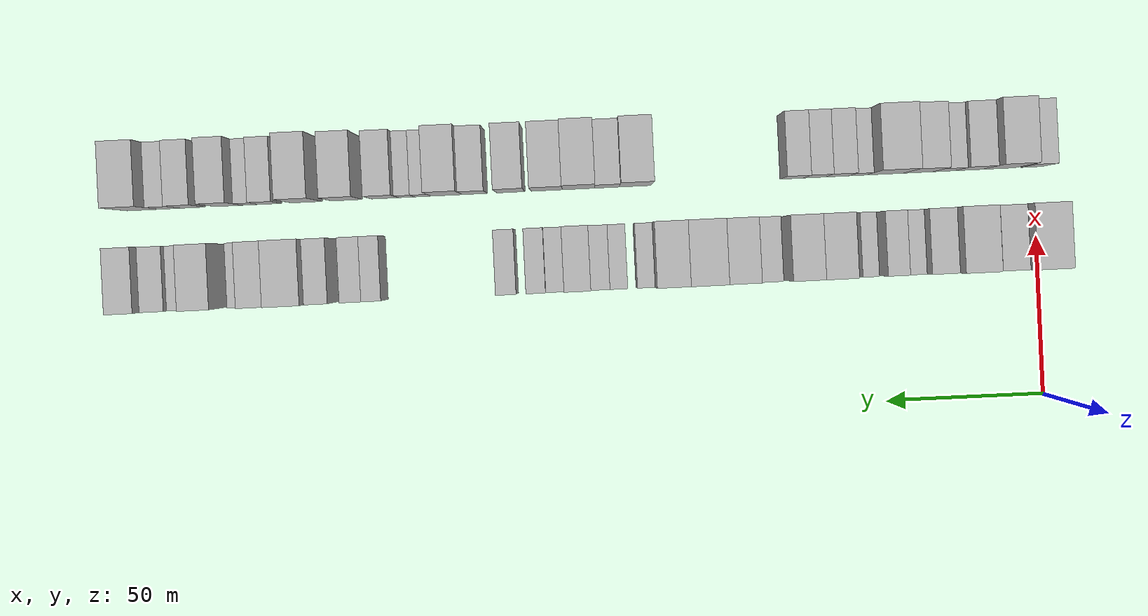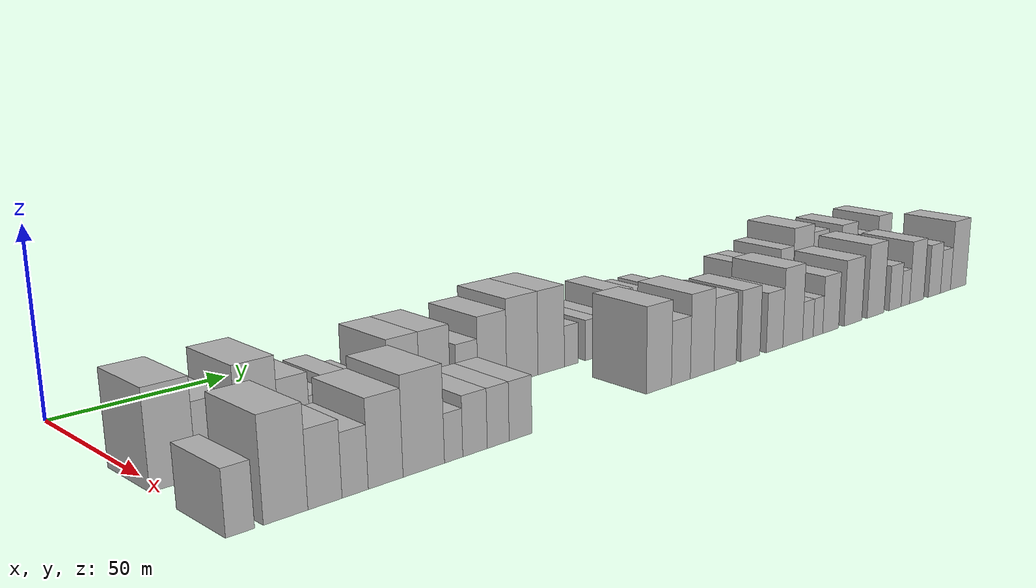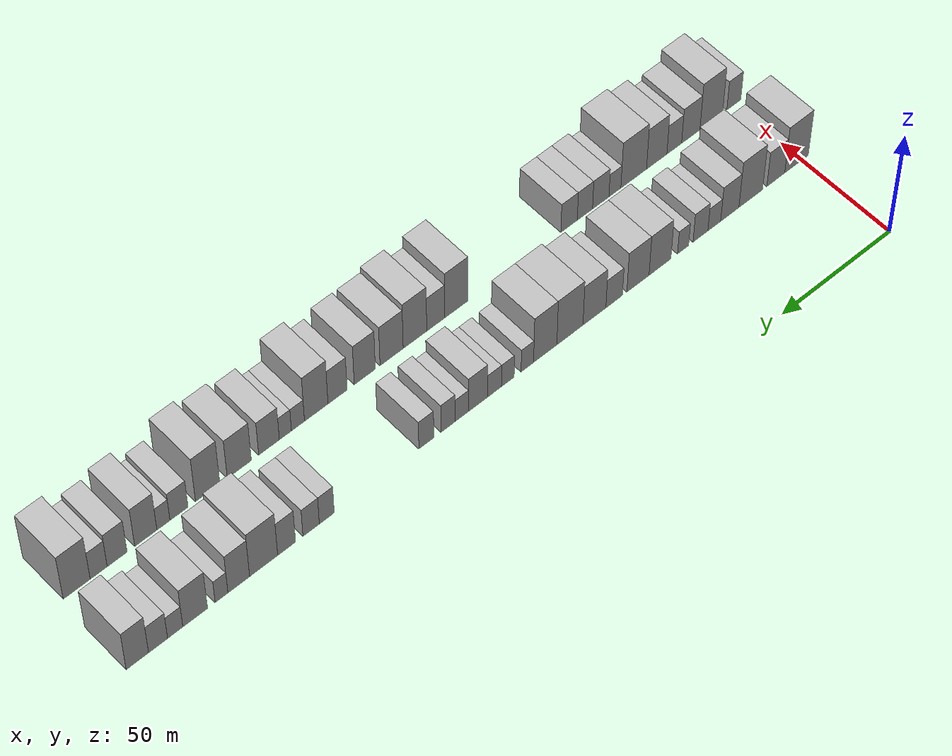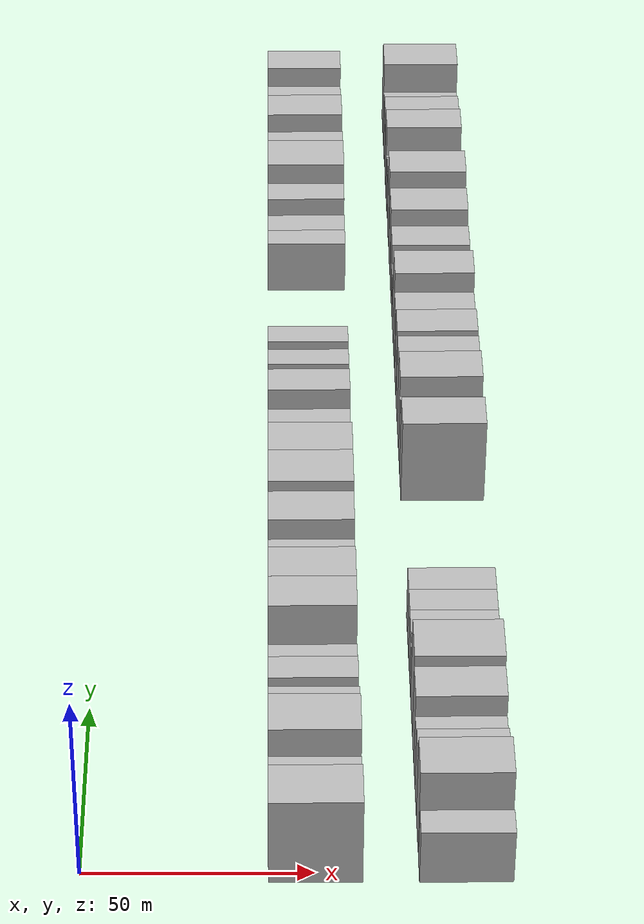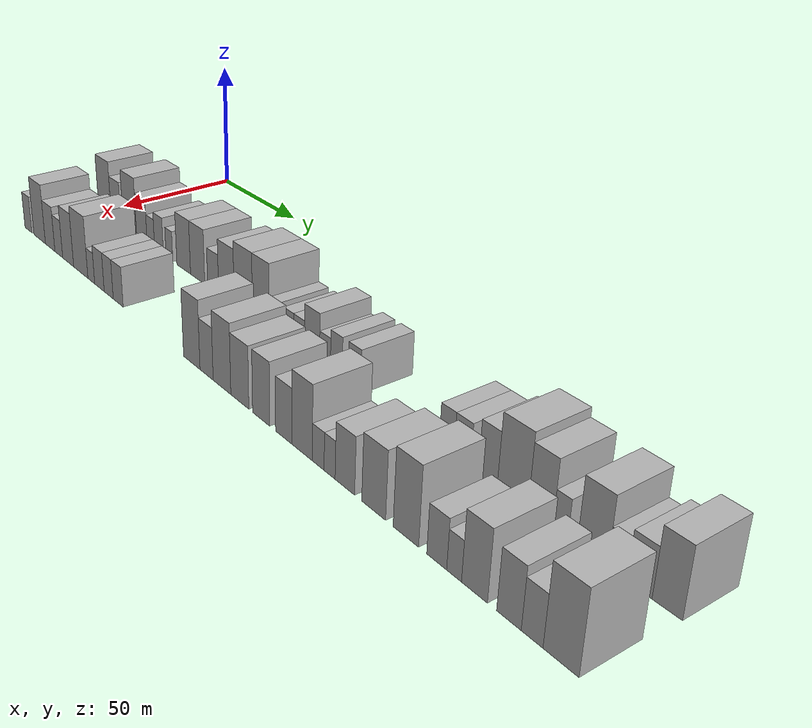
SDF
<sdf version="1.6">
 <world name="default">
  <model name="building_31">
   <static>1</static>
   <pose>50.0000 2.8149 0 0.000000 0.000000 0.000000</pose>
   <link name="link">
    <pose>0 0 12.00 0 0 0</pose>
    <collision name="collision"><geometry><box><size>20.0000 11.1670 24.0000</size></box></geometry></collision>
    <visual name="visual">
     <cast_shadows>0</cast_shadows>
     <geometry><box><size>20.0000 11.1670 24.0000</size></box></geometry>
     <material>
      <script>
       <uri>model://HANNAS_wall/materials/scripts</uri>
       <uri>model://HANNAS_wall/materials/textures</uri>
       <name>vrc/HANNAS_wall</name>
      </script>
     </material>
    </visual>
   </link>
  </model>
  <model name="building_32">
   <static>1</static>
   <pose>50.0000 12.5977 0 0.000000 0.000000 0.000000</pose>
   <link name="link">
    <pose>0 0 9.00 0 0 0</pose>
    <collision name="collision"><geometry><box><size>20.0000 8.3987 18.0000</size></box></geometry></collision>
    <visual name="visual">
     <cast_shadows>0</cast_shadows>
     <geometry><box><size>20.0000 8.3987 18.0000</size></box></geometry>
     <material>
      <script>
       <uri>model://HANNAS_wall/materials/scripts</uri>
       <uri>model://HANNAS_wall/materials/textures</uri>
       <name>vrc/HANNAS_wall</name>
      </script>
     </material>
    </visual>
   </link>
  </model>
  <model name="building_33">
   <static>1</static>
   <pose>50.0000 24.3071 0 0.000000 0.000000 0.000000</pose>
   <link name="link">
    <pose>0 0 12.00 0 0 0</pose>
    <collision name="collision"><geometry><box><size>20.0000 11.0200 24.0000</size></box></geometry></collision>
    <visual name="visual">
     <cast_shadows>0</cast_shadows>
     <geometry><box><size>20.0000 11.0200 24.0000</size></box></geometry>
     <material>
      <script>
       <uri>model://HANNAS_wall/materials/scripts</uri>
       <uri>model://HANNAS_wall/materials/textures</uri>
       <name>vrc/HANNAS_wall</name>
      </script>
     </material>
    </visual>
   </link>
  </model>
  <model name="building_34">
   <static>1</static>
   <pose>50.0000 34.0459 0 0.000000 0.000000 0.000000</pose>
   <link name="link">
    <pose>0 0 9.00 0 0 0</pose>
    <collision name="collision"><geometry><box><size>20.0000 8.4576 18.0000</size></box></geometry></collision>
    <visual name="visual">
     <cast_shadows>0</cast_shadows>
     <geometry><box><size>20.0000 8.4576 18.0000</size></box></geometry>
     <material>
      <script>
       <uri>model://HANNAS_wall/materials/scripts</uri>
       <uri>model://HANNAS_wall/materials/textures</uri>
       <name>vrc/HANNAS_wall</name>
      </script>
     </material>
    </visual>
   </link>
  </model>
  <model name="building_35">
   <static>1</static>
   <pose>50.0000 41.2181 0 0.000000 0.000000 0.000000</pose>
   <link name="link">
    <pose>0 0 6.00 0 0 0</pose>
    <collision name="collision"><geometry><box><size>20.0000 5.8868 12.0000</size></box></geometry></collision>
    <visual name="visual">
     <cast_shadows>0</cast_shadows>
     <geometry><box><size>20.0000 5.8868 12.0000</size></box></geometry>
     <material>
      <script>
       <uri>model://HANNAS_wall/materials/scripts</uri>
       <uri>model://HANNAS_wall/materials/textures</uri>
       <name>vrc/HANNAS_wall</name>
      </script>
     </material>
    </visual>
   </link>
  </model>
  <model name="building_36">
   <static>1</static>
   <pose>50.0000 47.5665 0 0.000000 0.000000 0.000000</pose>
   <link name="link">
    <pose>0 0 7.50 0 0 0</pose>
    <collision name="collision"><geometry><box><size>20.0000 6.8100 15.0000</size></box></geometry></collision>
    <visual name="visual">
     <cast_shadows>0</cast_shadows>
     <geometry><box><size>20.0000 6.8100 15.0000</size></box></geometry>
     <material>
      <script>
       <uri>model://HANNAS_wall/materials/scripts</uri>
       <uri>model://HANNAS_wall/materials/textures</uri>
       <name>vrc/HANNAS_wall</name>
      </script>
     </material>
    </visual>
   </link>
  </model>
  <model name="building_37">
   <static>1</static>
   <pose>50.0000 55.5154 0 0.000000 0.000000 0.000000</pose>
   <link name="link">
    <pose>0 0 6.00 0 0 0</pose>
    <collision name="collision"><geometry><box><size>20.0000 5.0878 12.0000</size></box></geometry></collision>
    <visual name="visual">
     <cast_shadows>0</cast_shadows>
     <geometry><box><size>20.0000 5.0878 12.0000</size></box></geometry>
     <material>
      <script>
       <uri>model://HANNAS_wall/materials/scripts</uri>
       <uri>model://HANNAS_wall/materials/textures</uri>
       <name>vrc/HANNAS_wall</name>
      </script>
     </material>
    </visual>
   </link>
  </model>
  <model name="building_38">
   <static>1</static>
   <pose>50.0000 66.0061 0 0.000000 0.000000 0.000000</pose>
   <link name="link">
    <pose>0 0 10.50 0 0 0</pose>
    <collision name="collision"><geometry><box><size>20.0000 9.8937 21.0000</size></box></geometry></collision>
    <visual name="visual">
     <cast_shadows>0</cast_shadows>
     <geometry><box><size>20.0000 9.8937 21.0000</size></box></geometry>
     <material>
      <script>
       <uri>model://HANNAS_wall/materials/scripts</uri>
       <uri>model://HANNAS_wall/materials/textures</uri>
       <name>vrc/HANNAS_wall</name>
      </script>
     </material>
    </visual>
   </link>
  </model>
  <model name="building_39">
   <static>1</static>
   <pose>50.0000 75.9395 0 0.000000 0.000000 0.000000</pose>
   <link name="link">
    <pose>0 0 10.50 0 0 0</pose>
    <collision name="collision"><geometry><box><size>20.0000 9.9730 21.0000</size></box></geometry></collision>
    <visual name="visual">
     <cast_shadows>0</cast_shadows>
     <geometry><box><size>20.0000 9.9730 21.0000</size></box></geometry>
     <material>
      <script>
       <uri>model://HANNAS_wall/materials/scripts</uri>
       <uri>model://HANNAS_wall/materials/textures</uri>
       <name>vrc/HANNAS_wall</name>
      </script>
     </material>
    </visual>
   </link>
  </model>
  <model name="building_40">
   <static>1</static>
   <pose>50.0000 86.6181 0 0.000000 0.000000 0.000000</pose>
   <link name="link">
    <pose>0 0 7.50 0 0 0</pose>
    <collision name="collision"><geometry><box><size>20.0000 7.3843 15.0000</size></box></geometry></collision>
    <visual name="visual">
     <cast_shadows>0</cast_shadows>
     <geometry><box><size>20.0000 7.3843 15.0000</size></box></geometry>
     <material>
      <script>
       <uri>model://HANNAS_wall/materials/scripts</uri>
       <uri>model://HANNAS_wall/materials/textures</uri>
       <name>vrc/HANNAS_wall</name>
      </script>
     </material>
    </visual>
   </link>
  </model>
  <model name="building_41">
   <static>1</static>
   <pose>50.0000 95.3826 0 0.000000 0.000000 0.000000</pose>
   <link name="link">
    <pose>0 0 10.50 0 0 0</pose>
    <collision name="collision"><geometry><box><size>20.0000 10.1447 21.0000</size></box></geometry></collision>
    <visual name="visual">
     <cast_shadows>0</cast_shadows>
     <geometry><box><size>20.0000 10.1447 21.0000</size></box></geometry>
     <material>
      <script>
       <uri>model://HANNAS_wall/materials/scripts</uri>
       <uri>model://HANNAS_wall/materials/textures</uri>
       <name>vrc/HANNAS_wall</name>
      </script>
     </material>
    </visual>
   </link>
  </model>
  <model name="building_42">
   <static>1</static>
   <pose>50.0000 106.2034 0 0.000000 0.000000 0.000000</pose>
   <link name="link">
    <pose>0 0 12.00 0 0 0</pose>
    <collision name="collision"><geometry><box><size>20.0000 11.4968 24.0000</size></box></geometry></collision>
    <visual name="visual">
     <cast_shadows>0</cast_shadows>
     <geometry><box><size>20.0000 11.4968 24.0000</size></box></geometry>
     <material>
      <script>
       <uri>model://HANNAS_wall/materials/scripts</uri>
       <uri>model://HANNAS_wall/materials/textures</uri>
       <name>vrc/HANNAS_wall</name>
      </script>
     </material>
    </visual>
   </link>
  </model>
  <model name="building_43">
   <static>1</static>
   <pose>50.0000 117.0278 0 0.000000 0.000000 0.000000</pose>
   <link name="link">
    <pose>0 0 12.00 0 0 0</pose>
    <collision name="collision"><geometry><box><size>20.0000 10.1520 24.0000</size></box></geometry></collision>
    <visual name="visual">
     <cast_shadows>0</cast_shadows>
     <geometry><box><size>20.0000 10.1520 24.0000</size></box></geometry>
     <material>
      <script>
       <uri>model://HANNAS_wall/materials/scripts</uri>
       <uri>model://HANNAS_wall/materials/textures</uri>
       <name>vrc/HANNAS_wall</name>
      </script>
     </material>
    </visual>
   </link>
  </model>
  <model name="building_44">
   <static>1</static>
   <pose>50.0000 124.8269 0 0.000000 0.000000 0.000000</pose>
   <link name="link">
    <pose>0 0 6.00 0 0 0</pose>
    <collision name="collision"><geometry><box><size>20.0000 5.4463 12.0000</size></box></geometry></collision>
    <visual name="visual">
     <cast_shadows>0</cast_shadows>
     <geometry><box><size>20.0000 5.4463 12.0000</size></box></geometry>
     <material>
      <script>
       <uri>model://HANNAS_wall/materials/scripts</uri>
       <uri>model://HANNAS_wall/materials/textures</uri>
       <name>vrc/HANNAS_wall</name>
      </script>
     </material>
    </visual>
   </link>
  </model>
  <model name="building_45">
   <static>1</static>
   <pose>50.0000 133.2887 0 0.000000 0.000000 0.000000</pose>
   <link name="link">
    <pose>0 0 6.00 0 0 0</pose>
    <collision name="collision"><geometry><box><size>20.0000 5.4773 12.0000</size></box></geometry></collision>
    <visual name="visual">
     <cast_shadows>0</cast_shadows>
     <geometry><box><size>20.0000 5.4773 12.0000</size></box></geometry>
     <material>
      <script>
       <uri>model://HANNAS_wall/materials/scripts</uri>
       <uri>model://HANNAS_wall/materials/textures</uri>
       <name>vrc/HANNAS_wall</name>
      </script>
     </material>
    </visual>
   </link>
  </model>
  <model name="building_46">
   <static>1</static>
   <pose>50.0000 138.9892 0 0.000000 0.000000 0.000000</pose>
   <link name="link">
    <pose>0 0 6.00 0 0 0</pose>
    <collision name="collision"><geometry><box><size>20.0000 5.9235 12.0000</size></box></geometry></collision>
    <visual name="visual">
     <cast_shadows>0</cast_shadows>
     <geometry><box><size>20.0000 5.9235 12.0000</size></box></geometry>
     <material>
      <script>
       <uri>model://HANNAS_wall/materials/scripts</uri>
       <uri>model://HANNAS_wall/materials/textures</uri>
       <name>vrc/HANNAS_wall</name>
      </script>
     </material>
    </visual>
   </link>
  </model>
  <model name="building_47">
   <static>1</static>
   <pose>50.0000 146.0393 0 0.000000 0.000000 0.000000</pose>
   <link name="link">
    <pose>0 0 9.00 0 0 0</pose>
    <collision name="collision"><geometry><box><size>20.0000 8.1767 18.0000</size></box></geometry></collision>
    <visual name="visual">
     <cast_shadows>0</cast_shadows>
     <geometry><box><size>20.0000 8.1767 18.0000</size></box></geometry>
     <material>
      <script>
       <uri>model://HANNAS_wall/materials/scripts</uri>
       <uri>model://HANNAS_wall/materials/textures</uri>
       <name>vrc/HANNAS_wall</name>
      </script>
     </material>
    </visual>
   </link>
  </model>
  <model name="building_48">
   <static>1</static>
   <pose>50.0000 152.9805 0 0.000000 0.000000 0.000000</pose>
   <link name="link">
    <pose>0 0 6.00 0 0 0</pose>
    <collision name="collision"><geometry><box><size>20.0000 5.7057 12.0000</size></box></geometry></collision>
    <visual name="visual">
     <cast_shadows>0</cast_shadows>
     <geometry><box><size>20.0000 5.7057 12.0000</size></box></geometry>
     <material>
      <script>
       <uri>model://HANNAS_wall/materials/scripts</uri>
       <uri>model://HANNAS_wall/materials/textures</uri>
       <name>vrc/HANNAS_wall</name>
      </script>
     </material>
    </visual>
   </link>
  </model>
  <model name="building_49">
   <static>1</static>
   <pose>50.0000 158.8335 0 0.000000 0.000000 0.000000</pose>
   <link name="link">
    <pose>0 0 7.50 0 0 0</pose>
    <collision name="collision"><geometry><box><size>20.0000 6.0004 15.0000</size></box></geometry></collision>
    <visual name="visual">
     <cast_shadows>0</cast_shadows>
     <geometry><box><size>20.0000 6.0004 15.0000</size></box></geometry>
     <material>
      <script>
       <uri>model://HANNAS_wall/materials/scripts</uri>
       <uri>model://HANNAS_wall/materials/textures</uri>
       <name>vrc/HANNAS_wall</name>
      </script>
     </material>
    </visual>
   </link>
  </model>
  <model name="building_50">
   <static>1</static>
   <pose>50.0000 167.9812 0 0.000000 0.000000 0.000000</pose>
   <link name="link">
    <pose>0 0 7.50 0 0 0</pose>
    <collision name="collision"><geometry><box><size>20.0000 6.2950 15.0000</size></box></geometry></collision>
    <visual name="visual">
     <cast_shadows>0</cast_shadows>
     <geometry><box><size>20.0000 6.2950 15.0000</size></box></geometry>
     <material>
      <script>
       <uri>model://HANNAS_wall/materials/scripts</uri>
       <uri>model://HANNAS_wall/materials/textures</uri>
       <name>vrc/HANNAS_wall</name>
      </script>
     </material>
    </visual>
   </link>
  </model>
  <model name="building_51">
   <static>1</static>
   <pose>50.0000 209.2563 0 0.000000 0.000000 0.000000</pose>
   <link name="link">
    <pose>0 0 7.50 0 0 0</pose>
    <collision name="collision"><geometry><box><size>20.0000 6.0850 15.0000</size></box></geometry></collision>
    <visual name="visual">
     <cast_shadows>0</cast_shadows>
     <geometry><box><size>20.0000 6.0850 15.0000</size></box></geometry>
     <material>
      <script>
       <uri>model://HANNAS_wall/materials/scripts</uri>
       <uri>model://HANNAS_wall/materials/textures</uri>
       <name>vrc/HANNAS_wall</name>
      </script>
     </material>
    </visual>
   </link>
  </model>
  <model name="building_52">
   <static>1</static>
   <pose>50.0000 215.6219 0 0.000000 0.000000 0.000000</pose>
   <link name="link">
    <pose>0 0 7.50 0 0 0</pose>
    <collision name="collision"><geometry><box><size>20.0000 6.6463 15.0000</size></box></geometry></collision>
    <visual name="visual">
     <cast_shadows>0</cast_shadows>
     <geometry><box><size>20.0000 6.6463 15.0000</size></box></geometry>
     <material>
      <script>
       <uri>model://HANNAS_wall/materials/scripts</uri>
       <uri>model://HANNAS_wall/materials/textures</uri>
       <name>vrc/HANNAS_wall</name>
      </script>
     </material>
    </visual>
   </link>
  </model>
  <model name="building_53">
   <static>1</static>
   <pose>50.0000 225.5456 0 0.000000 0.000000 0.000000</pose>
   <link name="link">
    <pose>0 0 9.00 0 0 0</pose>
    <collision name="collision"><geometry><box><size>20.0000 7.2011 18.0000</size></box></geometry></collision>
    <visual name="visual">
     <cast_shadows>0</cast_shadows>
     <geometry><box><size>20.0000 7.2011 18.0000</size></box></geometry>
     <material>
      <script>
       <uri>model://HANNAS_wall/materials/scripts</uri>
       <uri>model://HANNAS_wall/materials/textures</uri>
       <name>vrc/HANNAS_wall</name>
      </script>
     </material>
    </visual>
   </link>
  </model>
  <model name="building_54">
   <static>1</static>
   <pose>50.0000 234.7607 0 0.000000 0.000000 0.000000</pose>
   <link name="link">
    <pose>0 0 12.00 0 0 0</pose>
    <collision name="collision"><geometry><box><size>20.0000 11.2290 24.0000</size></box></geometry></collision>
    <visual name="visual">
     <cast_shadows>0</cast_shadows>
     <geometry><box><size>20.0000 11.2290 24.0000</size></box></geometry>
     <material>
      <script>
       <uri>model://HANNAS_wall/materials/scripts</uri>
       <uri>model://HANNAS_wall/materials/textures</uri>
       <name>vrc/HANNAS_wall</name>
      </script>
     </material>
    </visual>
   </link>
  </model>
  <model name="building_55">
   <static>1</static>
   <pose>50.0000 244.6903 0 0.000000 0.000000 0.000000</pose>
   <link name="link">
    <pose>0 0 10.50 0 0 0</pose>
    <collision name="collision"><geometry><box><size>20.0000 8.6302 21.0000</size></box></geometry></collision>
    <visual name="visual">
     <cast_shadows>0</cast_shadows>
     <geometry><box><size>20.0000 8.6302 21.0000</size></box></geometry>
     <material>
      <script>
       <uri>model://HANNAS_wall/materials/scripts</uri>
       <uri>model://HANNAS_wall/materials/textures</uri>
       <name>vrc/HANNAS_wall</name>
      </script>
     </material>
    </visual>
   </link>
  </model>
  <model name="building_56">
   <static>1</static>
   <pose>50.0000 251.5346 0 0.000000 0.000000 0.000000</pose>
   <link name="link">
    <pose>0 0 6.00 0 0 0</pose>
    <collision name="collision"><geometry><box><size>20.0000 5.0584 12.0000</size></box></geometry></collision>
    <visual name="visual">
     <cast_shadows>0</cast_shadows>
     <geometry><box><size>20.0000 5.0584 12.0000</size></box></geometry>
     <material>
      <script>
       <uri>model://HANNAS_wall/materials/scripts</uri>
       <uri>model://HANNAS_wall/materials/textures</uri>
       <name>vrc/HANNAS_wall</name>
      </script>
     </material>
    </visual>
   </link>
  </model>
  <model name="building_57">
   <static>1</static>
   <pose>50.0000 261.9085 0 0.000000 0.000000 0.000000</pose>
   <link name="link">
    <pose>0 0 10.50 0 0 0</pose>
    <collision name="collision"><geometry><box><size>20.0000 9.6893 21.0000</size></box></geometry></collision>
    <visual name="visual">
     <cast_shadows>0</cast_shadows>
     <geometry><box><size>20.0000 9.6893 21.0000</size></box></geometry>
     <material>
      <script>
       <uri>model://HANNAS_wall/materials/scripts</uri>
       <uri>model://HANNAS_wall/materials/textures</uri>
       <name>vrc/HANNAS_wall</name>
      </script>
     </material>
    </visual>
   </link>
  </model>
  <model name="building_58">
   <static>1</static>
   <pose>50.0000 269.7282 0 0.000000 0.000000 0.000000</pose>
   <link name="link">
    <pose>0 0 6.00 0 0 0</pose>
    <collision name="collision"><geometry><box><size>20.0000 5.9503 12.0000</size></box></geometry></collision>
    <visual name="visual">
     <cast_shadows>0</cast_shadows>
     <geometry><box><size>20.0000 5.9503 12.0000</size></box></geometry>
     <material>
      <script>
       <uri>model://HANNAS_wall/materials/scripts</uri>
       <uri>model://HANNAS_wall/materials/textures</uri>
       <name>vrc/HANNAS_wall</name>
      </script>
     </material>
    </visual>
   </link>
  </model>
  <model name="building_59">
   <static>1</static>
   <pose>50.0000 276.3991 0 0.000000 0.000000 0.000000</pose>
   <link name="link">
    <pose>0 0 7.50 0 0 0</pose>
    <collision name="collision"><geometry><box><size>20.0000 7.3915 15.0000</size></box></geometry></collision>
    <visual name="visual">
     <cast_shadows>0</cast_shadows>
     <geometry><box><size>20.0000 7.3915 15.0000</size></box></geometry>
     <material>
      <script>
       <uri>model://HANNAS_wall/materials/scripts</uri>
       <uri>model://HANNAS_wall/materials/textures</uri>
       <name>vrc/HANNAS_wall</name>
      </script>
     </material>
    </visual>
   </link>
  </model>
  <model name="building_60">
   <static>1</static>
   <pose>50.0000 284.4112 0 0.000000 0.000000 0.000000</pose>
   <link name="link">
    <pose>0 0 10.50 0 0 0</pose>
    <collision name="collision"><geometry><box><size>20.0000 8.6327 21.0000</size></box></geometry></collision>
    <visual name="visual">
     <cast_shadows>0</cast_shadows>
     <geometry><box><size>20.0000 8.6327 21.0000</size></box></geometry>
     <material>
      <script>
       <uri>model://HANNAS_wall/materials/scripts</uri>
       <uri>model://HANNAS_wall/materials/textures</uri>
       <name>vrc/HANNAS_wall</name>
      </script>
     </material>
    </visual>
   </link>
  </model>
  <model name="building_88">
   <static>1</static>
   <pose>82.0000 0.4182 0 0.000000 0.000000 0.000000</pose>
   <link name="link">
    <pose>0 0 7.50 0 0 0</pose>
    <collision name="collision"><geometry><box><size>20.0000 6.6098 15.0000</size></box></geometry></collision>
    <visual name="visual">
     <cast_shadows>0</cast_shadows>
     <geometry><box><size>20.0000 6.6098 15.0000</size></box></geometry>
     <material>
      <script>
       <uri>model://HANNAS_wall/materials/scripts</uri>
       <uri>model://HANNAS_wall/materials/textures</uri>
       <name>vrc/HANNAS_wall</name>
      </script>
     </material>
    </visual>
   </link>
  </model>
  <model name="building_89">
   <static>1</static>
   <pose>82.0000 11.0711 0 0.000000 0.000000 0.000000</pose>
   <link name="link">
    <pose>0 0 12.00 0 0 0</pose>
    <collision name="collision"><geometry><box><size>20.0000 10.6960 24.0000</size></box></geometry></collision>
    <visual name="visual">
     <cast_shadows>0</cast_shadows>
     <geometry><box><size>20.0000 10.6960 24.0000</size></box></geometry>
     <material>
      <script>
       <uri>model://HANNAS_wall/materials/scripts</uri>
       <uri>model://HANNAS_wall/materials/textures</uri>
       <name>vrc/HANNAS_wall</name>
      </script>
     </material>
    </visual>
   </link>
  </model>
  <model name="building_90">
   <static>1</static>
   <pose>82.0000 20.7036 0 0.000000 0.000000 0.000000</pose>
   <link name="link">
    <pose>0 0 9.00 0 0 0</pose>
    <collision name="collision"><geometry><box><size>20.0000 8.5691 18.0000</size></box></geometry></collision>
    <visual name="visual">
     <cast_shadows>0</cast_shadows>
     <geometry><box><size>20.0000 8.5691 18.0000</size></box></geometry>
     <material>
      <script>
       <uri>model://HANNAS_wall/materials/scripts</uri>
       <uri>model://HANNAS_wall/materials/textures</uri>
       <name>vrc/HANNAS_wall</name>
      </script>
     </material>
    </visual>
   </link>
  </model>
  <model name="building_91">
   <static>1</static>
   <pose>82.0000 28.4125 0 0.000000 0.000000 0.000000</pose>
   <link name="link">
    <pose>0 0 7.50 0 0 0</pose>
    <collision name="collision"><geometry><box><size>20.0000 6.8486 15.0000</size></box></geometry></collision>
    <visual name="visual">
     <cast_shadows>0</cast_shadows>
     <geometry><box><size>20.0000 6.8486 15.0000</size></box></geometry>
     <material>
      <script>
       <uri>model://HANNAS_wall/materials/scripts</uri>
       <uri>model://HANNAS_wall/materials/textures</uri>
       <name>vrc/HANNAS_wall</name>
      </script>
     </material>
    </visual>
   </link>
  </model>
  <model name="building_92">
   <static>1</static>
   <pose>82.0000 36.5526 0 0.000000 0.000000 0.000000</pose>
   <link name="link">
    <pose>0 0 10.50 0 0 0</pose>
    <collision name="collision"><geometry><box><size>20.0000 9.4316 21.0000</size></box></geometry></collision>
    <visual name="visual">
     <cast_shadows>0</cast_shadows>
     <geometry><box><size>20.0000 9.4316 21.0000</size></box></geometry>
     <material>
      <script>
       <uri>model://HANNAS_wall/materials/scripts</uri>
       <uri>model://HANNAS_wall/materials/textures</uri>
       <name>vrc/HANNAS_wall</name>
      </script>
     </material>
    </visual>
   </link>
  </model>
  <model name="building_93">
   <static>1</static>
   <pose>82.0000 47.1672 0 0.000000 0.000000 0.000000</pose>
   <link name="link">
    <pose>0 0 12.00 0 0 0</pose>
    <collision name="collision"><geometry><box><size>20.0000 11.7976 24.0000</size></box></geometry></collision>
    <visual name="visual">
     <cast_shadows>0</cast_shadows>
     <geometry><box><size>20.0000 11.7976 24.0000</size></box></geometry>
     <material>
      <script>
       <uri>model://HANNAS_wall/materials/scripts</uri>
       <uri>model://HANNAS_wall/materials/textures</uri>
       <name>vrc/HANNAS_wall</name>
      </script>
     </material>
    </visual>
   </link>
  </model>
  <model name="building_94">
   <static>1</static>
   <pose>82.0000 55.7799 0 0.000000 0.000000 0.000000</pose>
   <link name="link">
    <pose>0 0 6.00 0 0 0</pose>
    <collision name="collision"><geometry><box><size>20.0000 5.4279 12.0000</size></box></geometry></collision>
    <visual name="visual">
     <cast_shadows>0</cast_shadows>
     <geometry><box><size>20.0000 5.4279 12.0000</size></box></geometry>
     <material>
      <script>
       <uri>model://HANNAS_wall/materials/scripts</uri>
       <uri>model://HANNAS_wall/materials/textures</uri>
       <name>vrc/HANNAS_wall</name>
      </script>
     </material>
    </visual>
   </link>
  </model>
  <model name="building_95">
   <static>1</static>
   <pose>82.0000 62.2298 0 0.000000 0.000000 0.000000</pose>
   <link name="link">
    <pose>0 0 7.50 0 0 0</pose>
    <collision name="collision"><geometry><box><size>20.0000 7.4717 15.0000</size></box></geometry></collision>
    <visual name="visual">
     <cast_shadows>0</cast_shadows>
     <geometry><box><size>20.0000 7.4717 15.0000</size></box></geometry>
     <material>
      <script>
       <uri>model://HANNAS_wall/materials/scripts</uri>
       <uri>model://HANNAS_wall/materials/textures</uri>
       <name>vrc/HANNAS_wall</name>
      </script>
     </material>
    </visual>
   </link>
  </model>
  <model name="building_96">
   <static>1</static>
   <pose>82.0000 69.4104 0 0.000000 0.000000 0.000000</pose>
   <link name="link">
    <pose>0 0 7.50 0 0 0</pose>
    <collision name="collision"><geometry><box><size>20.0000 6.8896 15.0000</size></box></geometry></collision>
    <visual name="visual">
     <cast_shadows>0</cast_shadows>
     <geometry><box><size>20.0000 6.8896 15.0000</size></box></geometry>
     <material>
      <script>
       <uri>model://HANNAS_wall/materials/scripts</uri>
       <uri>model://HANNAS_wall/materials/textures</uri>
       <name>vrc/HANNAS_wall</name>
      </script>
     </material>
    </visual>
   </link>
  </model>
  <model name="building_97">
   <static>1</static>
   <pose>82.0000 76.5579 0 0.000000 0.000000 0.000000</pose>
   <link name="link">
    <pose>0 0 7.50 0 0 0</pose>
    <collision name="collision"><geometry><box><size>20.0000 7.4055 15.0000</size></box></geometry></collision>
    <visual name="visual">
     <cast_shadows>0</cast_shadows>
     <geometry><box><size>20.0000 7.4055 15.0000</size></box></geometry>
     <material>
      <script>
       <uri>model://HANNAS_wall/materials/scripts</uri>
       <uri>model://HANNAS_wall/materials/textures</uri>
       <name>vrc/HANNAS_wall</name>
      </script>
     </material>
    </visual>
   </link>
  </model>
  <model name="building_98">
   <static>1</static>
   <pose>82.0000 126.3773 0 0.000000 0.000000 0.000000</pose>
   <link name="link">
    <pose>0 0 12.00 0 0 0</pose>
    <collision name="collision"><geometry><box><size>20.0000 10.0778 24.0000</size></box></geometry></collision>
    <visual name="visual">
     <cast_shadows>0</cast_shadows>
     <geometry><box><size>20.0000 10.0778 24.0000</size></box></geometry>
     <material>
      <script>
       <uri>model://HANNAS_wall/materials/scripts</uri>
       <uri>model://HANNAS_wall/materials/textures</uri>
       <name>vrc/HANNAS_wall</name>
      </script>
     </material>
    </visual>
   </link>
  </model>
  <model name="building_99">
   <static>1</static>
   <pose>82.0000 135.3152 0 0.000000 0.000000 0.000000</pose>
   <link name="link">
    <pose>0 0 9.00 0 0 0</pose>
    <collision name="collision"><geometry><box><size>20.0000 7.7981 18.0000</size></box></geometry></collision>
    <visual name="visual">
     <cast_shadows>0</cast_shadows>
     <geometry><box><size>20.0000 7.7981 18.0000</size></box></geometry>
     <material>
      <script>
       <uri>model://HANNAS_wall/materials/scripts</uri>
       <uri>model://HANNAS_wall/materials/textures</uri>
       <name>vrc/HANNAS_wall</name>
      </script>
     </material>
    </visual>
   </link>
  </model>
  <model name="building_100">
   <static>1</static>
   <pose>82.0000 144.2691 0 0.000000 0.000000 0.000000</pose>
   <link name="link">
    <pose>0 0 12.00 0 0 0</pose>
    <collision name="collision"><geometry><box><size>20.0000 10.1096 24.0000</size></box></geometry></collision>
    <visual name="visual">
     <cast_shadows>0</cast_shadows>
     <geometry><box><size>20.0000 10.1096 24.0000</size></box></geometry>
     <material>
      <script>
       <uri>model://HANNAS_wall/materials/scripts</uri>
       <uri>model://HANNAS_wall/materials/textures</uri>
       <name>vrc/HANNAS_wall</name>
      </script>
     </material>
    </visual>
   </link>
  </model>
  <model name="building_101">
   <static>1</static>
   <pose>82.0000 154.2586 0 0.000000 0.000000 0.000000</pose>
   <link name="link">
    <pose>0 0 10.50 0 0 0</pose>
    <collision name="collision"><geometry><box><size>20.0000 9.8695 21.0000</size></box></geometry></collision>
    <visual name="visual">
     <cast_shadows>0</cast_shadows>
     <geometry><box><size>20.0000 9.8695 21.0000</size></box></geometry>
     <material>
      <script>
       <uri>model://HANNAS_wall/materials/scripts</uri>
       <uri>model://HANNAS_wall/materials/textures</uri>
       <name>vrc/HANNAS_wall</name>
      </script>
     </material>
    </visual>
   </link>
  </model>
  <model name="building_102">
   <static>1</static>
   <pose>82.0000 165.6561 0 0.000000 0.000000 0.000000</pose>
   <link name="link">
    <pose>0 0 10.50 0 0 0</pose>
    <collision name="collision"><geometry><box><size>20.0000 8.9255 21.0000</size></box></geometry></collision>
    <visual name="visual">
     <cast_shadows>0</cast_shadows>
     <geometry><box><size>20.0000 8.9255 21.0000</size></box></geometry>
     <material>
      <script>
       <uri>model://HANNAS_wall/materials/scripts</uri>
       <uri>model://HANNAS_wall/materials/textures</uri>
       <name>vrc/HANNAS_wall</name>
      </script>
     </material>
    </visual>
   </link>
  </model>
  <model name="building_103">
   <static>1</static>
   <pose>82.0000 177.1162 0 0.000000 0.000000 0.000000</pose>
   <link name="link">
    <pose>0 0 9.00 0 0 0</pose>
    <collision name="collision"><geometry><box><size>20.0000 7.9947 18.0000</size></box></geometry></collision>
    <visual name="visual">
     <cast_shadows>0</cast_shadows>
     <geometry><box><size>20.0000 7.9947 18.0000</size></box></geometry>
     <material>
      <script>
       <uri>model://HANNAS_wall/materials/scripts</uri>
       <uri>model://HANNAS_wall/materials/textures</uri>
       <name>vrc/HANNAS_wall</name>
      </script>
     </material>
    </visual>
   </link>
  </model>
  <model name="building_104">
   <static>1</static>
   <pose>82.0000 186.0093 0 0.000000 0.000000 0.000000</pose>
   <link name="link">
    <pose>0 0 12.00 0 0 0</pose>
    <collision name="collision"><geometry><box><size>20.0000 9.7913 24.0000</size></box></geometry></collision>
    <visual name="visual">
     <cast_shadows>0</cast_shadows>
     <geometry><box><size>20.0000 9.7913 24.0000</size></box></geometry>
     <material>
      <script>
       <uri>model://HANNAS_wall/materials/scripts</uri>
       <uri>model://HANNAS_wall/materials/textures</uri>
       <name>vrc/HANNAS_wall</name>
      </script>
     </material>
    </visual>
   </link>
  </model>
  <model name="building_105">
   <static>1</static>
   <pose>82.0000 193.6124 0 0.000000 0.000000 0.000000</pose>
   <link name="link">
    <pose>0 0 6.00 0 0 0</pose>
    <collision name="collision"><geometry><box><size>20.0000 5.4150 12.0000</size></box></geometry></collision>
    <visual name="visual">
     <cast_shadows>0</cast_shadows>
     <geometry><box><size>20.0000 5.4150 12.0000</size></box></geometry>
     <material>
      <script>
       <uri>model://HANNAS_wall/materials/scripts</uri>
       <uri>model://HANNAS_wall/materials/textures</uri>
       <name>vrc/HANNAS_wall</name>
      </script>
     </material>
    </visual>
   </link>
  </model>
  <model name="building_106">
   <static>1</static>
   <pose>82.0000 198.8074 0 0.000000 0.000000 0.000000</pose>
   <link name="link">
    <pose>0 0 6.00 0 0 0</pose>
    <collision name="collision"><geometry><box><size>20.0000 4.9749 12.0000</size></box></geometry></collision>
    <visual name="visual">
     <cast_shadows>0</cast_shadows>
     <geometry><box><size>20.0000 4.9749 12.0000</size></box></geometry>
     <material>
      <script>
       <uri>model://HANNAS_wall/materials/scripts</uri>
       <uri>model://HANNAS_wall/materials/textures</uri>
       <name>vrc/HANNAS_wall</name>
      </script>
     </material>
    </visual>
   </link>
  </model>
  <model name="building_107">
   <static>1</static>
   <pose>82.0000 205.5395 0 0.000000 0.000000 0.000000</pose>
   <link name="link">
    <pose>0 0 9.00 0 0 0</pose>
    <collision name="collision"><geometry><box><size>20.0000 8.4893 18.0000</size></box></geometry></collision>
    <visual name="visual">
     <cast_shadows>0</cast_shadows>
     <geometry><box><size>20.0000 8.4893 18.0000</size></box></geometry>
     <material>
      <script>
       <uri>model://HANNAS_wall/materials/scripts</uri>
       <uri>model://HANNAS_wall/materials/textures</uri>
       <name>vrc/HANNAS_wall</name>
      </script>
     </material>
    </visual>
   </link>
  </model>
  <model name="building_108">
   <static>1</static>
   <pose>82.0000 217.6828 0 0.000000 0.000000 0.000000</pose>
   <link name="link">
    <pose>0 0 10.50 0 0 0</pose>
    <collision name="collision"><geometry><box><size>20.0000 9.7973 21.0000</size></box></geometry></collision>
    <visual name="visual">
     <cast_shadows>0</cast_shadows>
     <geometry><box><size>20.0000 9.7973 21.0000</size></box></geometry>
     <material>
      <script>
       <uri>model://HANNAS_wall/materials/scripts</uri>
       <uri>model://HANNAS_wall/materials/textures</uri>
       <name>vrc/HANNAS_wall</name>
      </script>
     </material>
    </visual>
   </link>
  </model>
  <model name="building_109">
   <static>1</static>
   <pose>82.0000 230.4877 0 0.000000 0.000000 0.000000</pose>
   <link name="link">
    <pose>0 0 12.00 0 0 0</pose>
    <collision name="collision"><geometry><box><size>20.0000 9.8126 24.0000</size></box></geometry></collision>
    <visual name="visual">
     <cast_shadows>0</cast_shadows>
     <geometry><box><size>20.0000 9.8126 24.0000</size></box></geometry>
     <material>
      <script>
       <uri>model://HANNAS_wall/materials/scripts</uri>
       <uri>model://HANNAS_wall/materials/textures</uri>
       <name>vrc/HANNAS_wall</name>
      </script>
     </material>
    </visual>
   </link>
  </model>
  <model name="building_110">
   <static>1</static>
   <pose>82.0000 242.0053 0 0.000000 0.000000 0.000000</pose>
   <link name="link">
    <pose>0 0 7.50 0 0 0</pose>
    <collision name="collision"><geometry><box><size>20.0000 7.2226 15.0000</size></box></geometry></collision>
    <visual name="visual">
     <cast_shadows>0</cast_shadows>
     <geometry><box><size>20.0000 7.2226 15.0000</size></box></geometry>
     <material>
      <script>
       <uri>model://HANNAS_wall/materials/scripts</uri>
       <uri>model://HANNAS_wall/materials/textures</uri>
       <name>vrc/HANNAS_wall</name>
      </script>
     </material>
    </visual>
   </link>
  </model>
  <model name="building_111">
   <static>1</static>
   <pose>82.0000 248.2107 0 0.000000 0.000000 0.000000</pose>
   <link name="link">
    <pose>0 0 6.00 0 0 0</pose>
    <collision name="collision"><geometry><box><size>20.0000 5.1881 12.0000</size></box></geometry></collision>
    <visual name="visual">
     <cast_shadows>0</cast_shadows>
     <geometry><box><size>20.0000 5.1881 12.0000</size></box></geometry>
     <material>
      <script>
       <uri>model://HANNAS_wall/materials/scripts</uri>
       <uri>model://HANNAS_wall/materials/textures</uri>
       <name>vrc/HANNAS_wall</name>
      </script>
     </material>
    </visual>
   </link>
  </model>
  <model name="building_112">
   <static>1</static>
   <pose>82.0000 255.1956 0 0.000000 0.000000 0.000000</pose>
   <link name="link">
    <pose>0 0 10.50 0 0 0</pose>
    <collision name="collision"><geometry><box><size>20.0000 8.7817 21.0000</size></box></geometry></collision>
    <visual name="visual">
     <cast_shadows>0</cast_shadows>
     <geometry><box><size>20.0000 8.7817 21.0000</size></box></geometry>
     <material>
      <script>
       <uri>model://HANNAS_wall/materials/scripts</uri>
       <uri>model://HANNAS_wall/materials/textures</uri>
       <name>vrc/HANNAS_wall</name>
      </script>
     </material>
    </visual>
   </link>
  </model>
  <model name="building_113">
   <static>1</static>
   <pose>82.0000 266.4853 0 0.000000 0.000000 0.000000</pose>
   <link name="link">
    <pose>0 0 9.00 0 0 0</pose>
    <collision name="collision"><geometry><box><size>20.0000 7.7977 18.0000</size></box></geometry></collision>
    <visual name="visual">
     <cast_shadows>0</cast_shadows>
     <geometry><box><size>20.0000 7.7977 18.0000</size></box></geometry>
     <material>
      <script>
       <uri>model://HANNAS_wall/materials/scripts</uri>
       <uri>model://HANNAS_wall/materials/textures</uri>
       <name>vrc/HANNAS_wall</name>
      </script>
     </material>
    </visual>
   </link>
  </model>
  <model name="building_114">
   <static>1</static>
   <pose>82.0000 273.7025 0 0.000000 0.000000 0.000000</pose>
   <link name="link">
    <pose>0 0 7.50 0 0 0</pose>
    <collision name="collision"><geometry><box><size>20.0000 6.6368 15.0000</size></box></geometry></collision>
    <visual name="visual">
     <cast_shadows>0</cast_shadows>
     <geometry><box><size>20.0000 6.6368 15.0000</size></box></geometry>
     <material>
      <script>
       <uri>model://HANNAS_wall/materials/scripts</uri>
       <uri>model://HANNAS_wall/materials/textures</uri>
       <name>vrc/HANNAS_wall</name>
      </script>
     </material>
    </visual>
   </link>
  </model>
  <model name="building_115">
   <static>1</static>
   <pose>82.0000 282.2636 0 0.000000 0.000000 0.000000</pose>
   <link name="link">
    <pose>0 0 12.00 0 0 0</pose>
    <collision name="collision"><geometry><box><size>20.0000 10.4853 24.0000</size></box></geometry></collision>
    <visual name="visual">
     <cast_shadows>0</cast_shadows>
     <geometry><box><size>20.0000 10.4853 24.0000</size></box></geometry>
     <material>
      <script>
       <uri>model://HANNAS_wall/materials/scripts</uri>
       <uri>model://HANNAS_wall/materials/textures</uri>
       <name>vrc/HANNAS_wall</name>
      </script>
     </material>
    </visual>
   </link>
  </model>
 </world>
</sdf>
